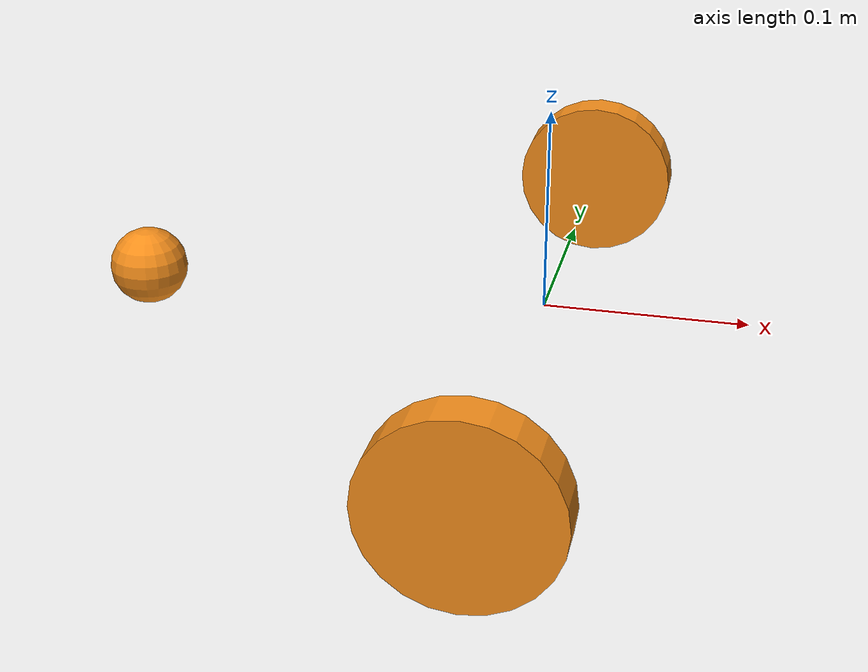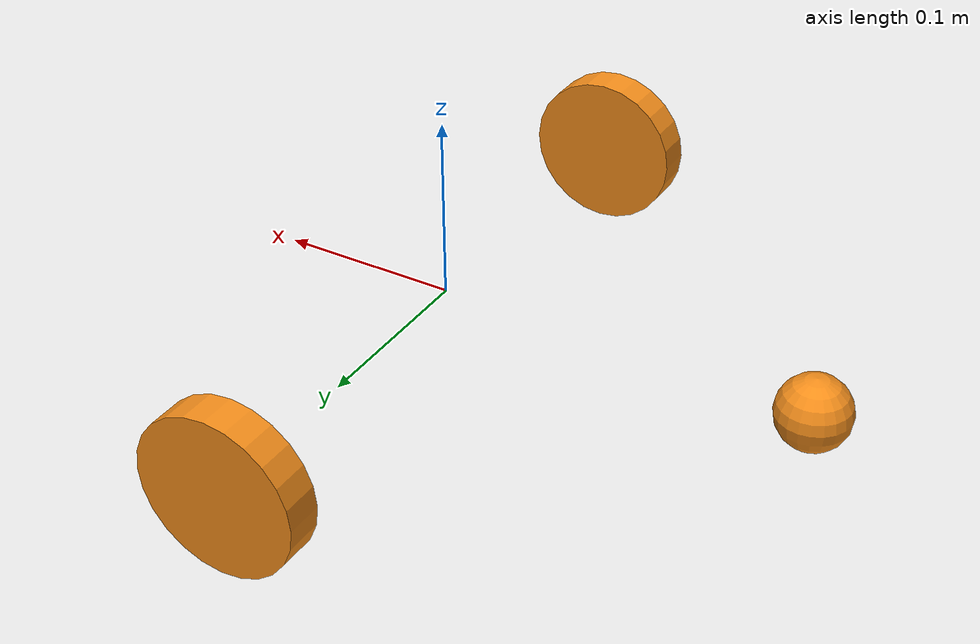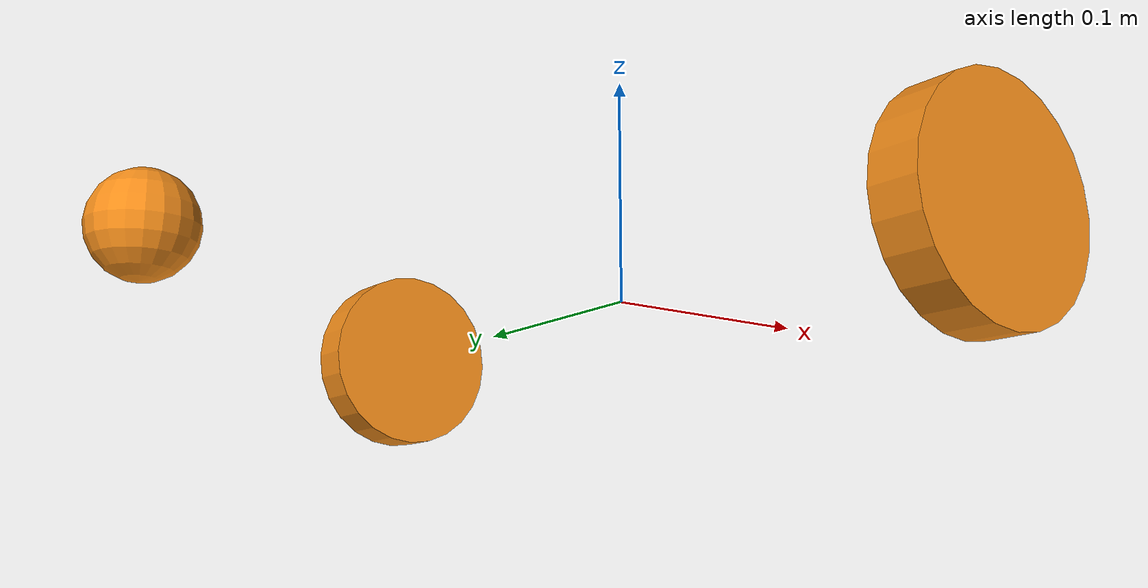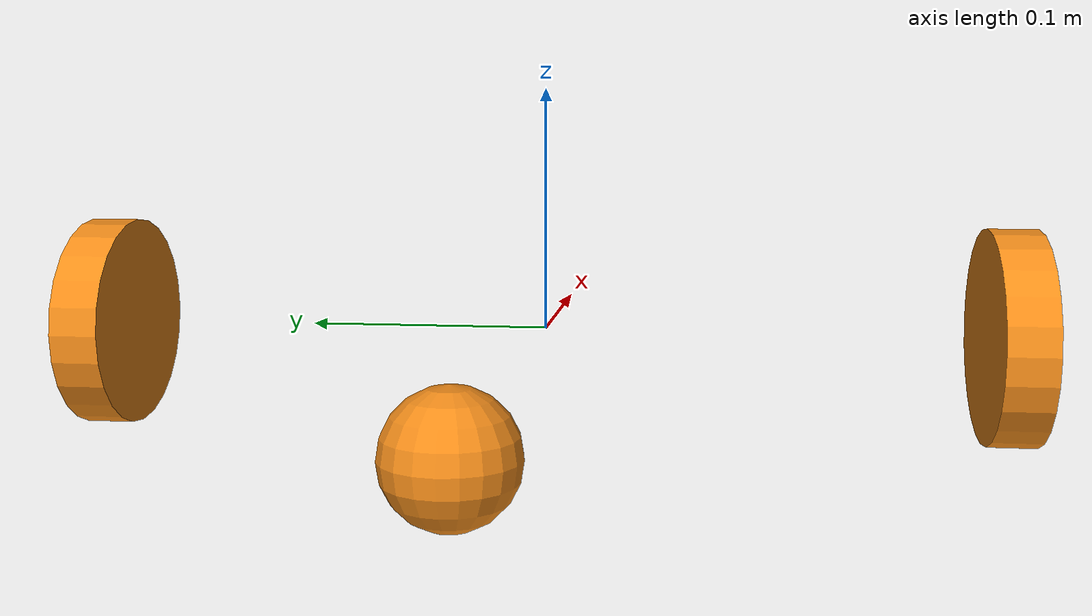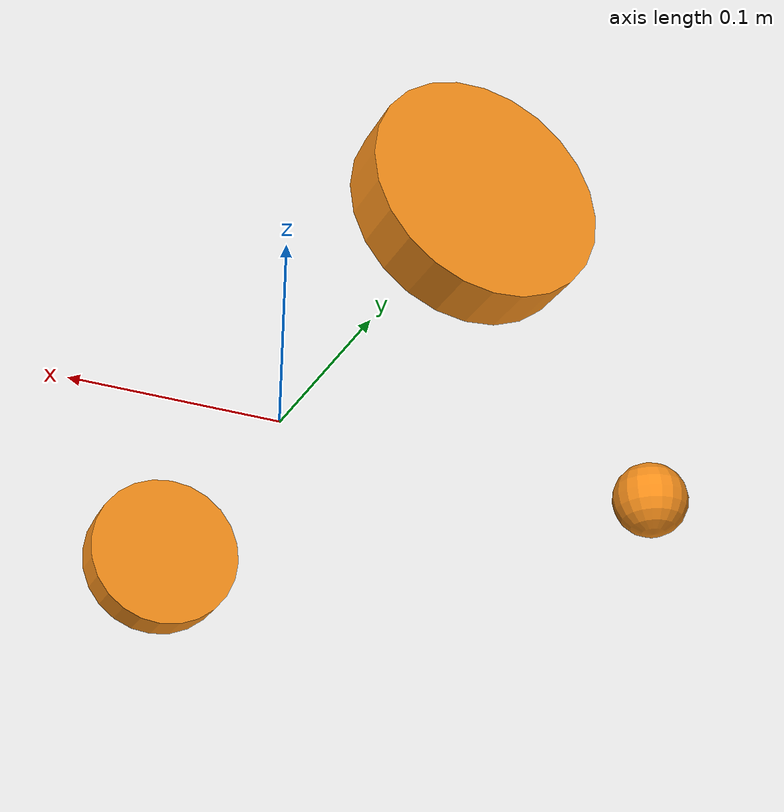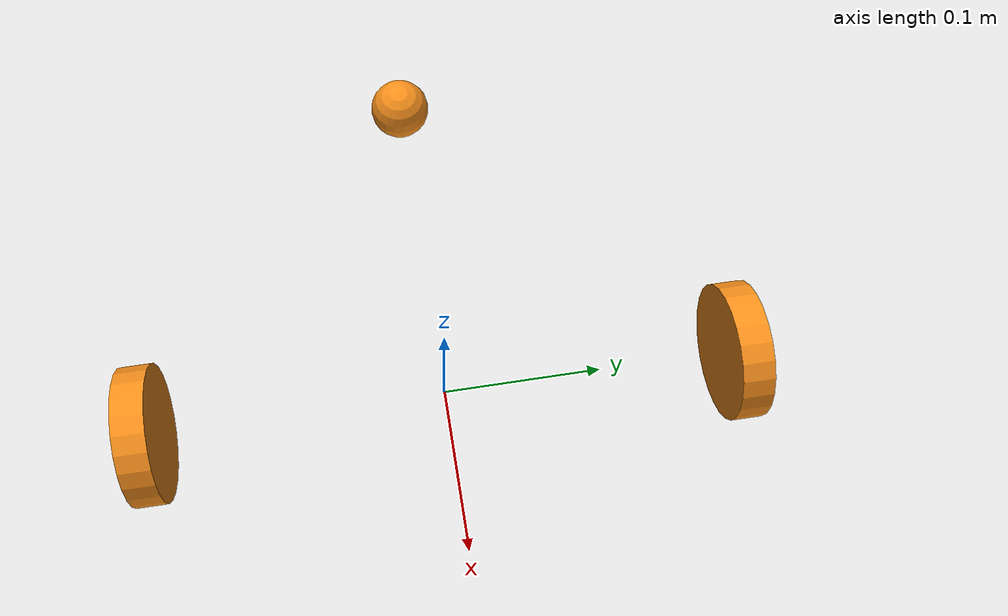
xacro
<?xml version="1.0"?>
<robot xmlns:xacro="http://www.ros.org/wiki/xacro">

    <xacro:include filename="inertial_macros.xacro"/>

    <!-- Base Link -->
    <link name="base_link"/>

    <!-- Chassis -->
    <joint name="chassis_joint" type="fixed">
        <parent link="base_link"/>
        <child link="chassis"/>
        <origin xyz="-0.1 0 0"/>
    </joint>

    <!-- xyz = 172 of box dimesions, x is forward, y is to the sides -->
    <link name="chassis">
        <collision>
            <origin xyz="0.1775 0 0.175" rpy="0 0 0"/>
            <geometry>
                <box size="0.4 0.355 0.350"/>
            </geometry>
        </collision>
        <xacro:inertial_box mass="1.0" x="0.355" y="0.400" z="0.350" origin_xyz="0.1 0 -0.05" origin_rpy="0 0 0"/>
    </link>

    <gazebo reference="chassis">
        <material>Gazebo/White</material>
    </gazebo>

    <!-- TRACK WIDTH: 373 -->

    <!-- Left Wheel -->
    <joint name="left_wheel_joint" type="fixed">
        <parent link="base_link"/>
        <child link="left_wheel"/>
        <origin xyz="0 0.188 0" rpy="-${pi/2} 0 0"/>
        <axis xyz="0 0 1"/>
    </joint>

    <link name="left_wheel">
        <visual>
            <geometry>
                <cylinder radius="0.044" length="0.02"/>
            </geometry>
            <material name="orange"/>
        </visual>
        <collision>
            <geometry>
                <cylinder radius="0.044" length="0.02"/>
            </geometry>
        </collision>
        <xacro:inertial_cylinder mass="0.1" length="0.02" radius="0.044"/>
    </link>

    <gazebo reference="left_wheel">
        <material>Gazebo/Orange</material>
    </gazebo>

    <!-- Right Wheel -->
    <joint name="right_wheel_joint" type="fixed">
        <parent link="base_link"/>
        <child link="right_wheel"/>
        <origin xyz="0 -0.188 0" rpy="${pi/2} 0 0"/>
        <axis xyz="0 0 -1"/>
    </joint>

    <link name="right_wheel">
        <visual>
            <geometry>
                <cylinder radius="0.044" length="0.02"/>
            </geometry>
            <material name="orange"/>
        </visual>
        <collision>
            <geometry>
                <cylinder radius="0.044" length="0.02"/>
            </geometry>
        </collision>
        <xacro:inertial_cylinder mass="0.1" length="0.02" radius="0.044"/>
    </link>

    <gazebo reference="right_wheel">
        <material>Gazebo/Orange</material>
    </gazebo>

    <!-- Caster Wheel -->
    <joint name="caster_wheel_joint" type="fixed">
        <parent link="chassis"/>
        <child link="caster_wheel"/>
        <origin xyz="-0.11 0 0" rpy="0 0 0"/>
    </joint>

    <link name="caster_wheel">
        <visual>
            <geometry>
                <sphere radius="0.02"/>
            </geometry>
            <material name="orange"/>
        </visual>
        <collision>
            <geometry>
                <sphere radius="0.02"/>
            </geometry>
            <surface>
                <friction>
                    <ode>
                        <mu>0.08</mu>
                        <mu2>0.08</mu2>
                    </ode>
                </friction>
            </surface>
        </collision>
        <xacro:inertial_sphere mass="0.1" radius="0.02"/>
    </link>

    <gazebo reference="caster_wheel">
        <material>Gazebo/Orange</material>
        <mu1 value="0.0001"/>
        <mu2 value="0.0001"/>
    </gazebo>

    <transmission name="left_wheel_joint_tran">
        <type>transmission_interface/SimpleTransmission</type>
        <joint name="left_wheel_joint">
            <hardwareInterface>hardware_interface/EffortJointInterface</hardwareInterface>
        </joint>
        <actuator name="left_wheel_joint_actr">
            <hardwareInterface>hardware_interface/EffortJointInterface</hardwareInterface>
            <mechanicalReduction>1</mechanicalReduction>
        </actuator>
    </transmission>

        <transmission name="right_wheel_joint_tran">
        <type>transmission_interface/SimpleTransmission</type>
        <joint name="right_wheel_joint">
            <hardwareInterface>hardware_interface/EffortJointInterface</hardwareInterface>
        </joint>
        <actuator name="right_wheel_joint_actr">
            <hardwareInterface>hardware_interface/EffortJointInterface</hardwareInterface>
            <mechanicalReduction>1</mechanicalReduction>
        </actuator>
    </transmission>

</robot>

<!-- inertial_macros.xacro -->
<robot xmlns:xacro="http://www.ros.org/wiki/xacro">

    <!-- Sphere Inertia Macro -->
    <xacro:macro name="inertial_sphere" params="mass radius">
        <inertial>
            <mass value="${mass}"/>
            <origin xyz="0 0 0" rpy="0 0 0"/>
            <inertia ixx="${(2/5) * mass * (radius * radius)}" ixy="0.0" ixz="0.0"
                    iyy="${(2/5) * mass * (radius * radius)}" iyz="0.0"
                    izz="${(2/5) * mass * (radius * radius)}"/>
        </inertial>
    </xacro:macro>

    <!-- Box Inertia Macro -->
    <xacro:macro name="inertial_box" params="mass x y z">
        <inertial>
            <mass value="${mass}"/>
            <origin xyz="0 0 0" rpy="0 0 0"/>
            <inertia ixx="${(1/12) * mass * (y * y + z * z)}" ixy="0.0" ixz="0.0"
                    iyy="${(1/12) * mass * (x * x + z * z)}" iyz="0.0"
                    izz="${(1/12) * mass * (x * x + y * y)}"/>
        </inertial>
    </xacro:macro>

    <!-- Cylinder Inertia Macro -->
    <xacro:macro name="inertial_cylinder" params="mass length radius">
        <inertial>
            <mass value="${mass}"/>
            <origin xyz="0 0 0" rpy="0 0 0"/>
            <inertia ixx="${(1/12) * mass * (3 * radius * radius + length * length)}" ixy="0.0" ixz="0.0"
                    iyy="${(1/12) * mass * (3 * radius * radius + length * length)}" iyz="0.0"
                    izz="${(1/2) * mass * (radius * radius)}"/>
        </inertial>
    </xacro:macro>

</robot>
